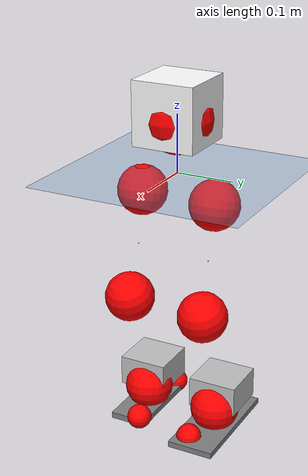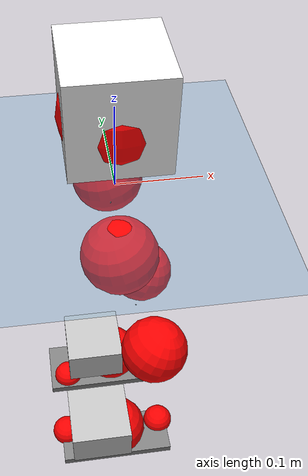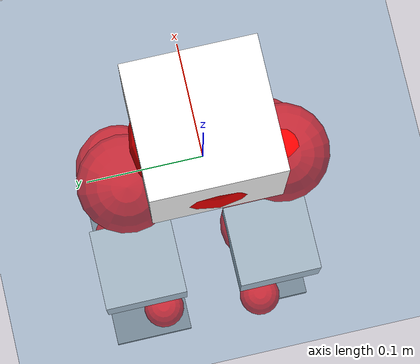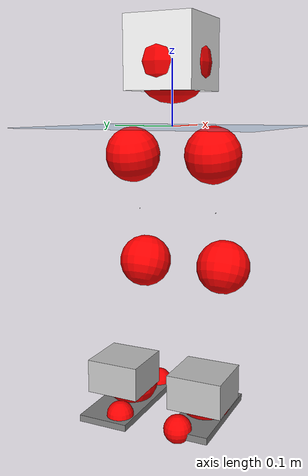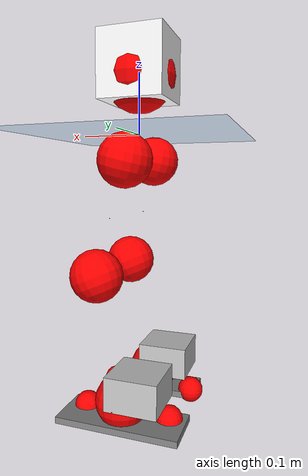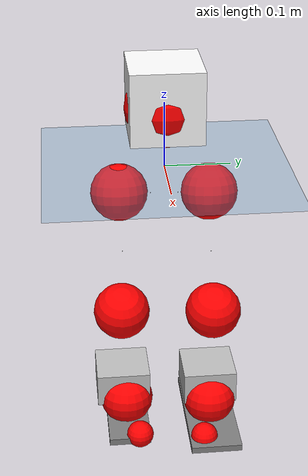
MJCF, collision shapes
<mujoco model="pi_12dof_release_v1">
  <compiler angle="radian" assetdir="assets" balanceinertia="true" inertiafromgeom="false"/>

  <option timestep="0.005" density="1.2" viscosity="2e-05"/>

  <size nkey="1"/>

  <visual>
    <quality shadowsize="8192"/>
    <map shadowclip="0.5"/>
  </visual>

  <default>
    <default class="/">
      <joint armature="0.01" damping="0.01" frictionloss="0.01"/>
      <geom contype="0" conaffinity="0" group="1" solref="-1000 -80"/>
      <site size="0.01 0.005 0.005" group="5"/>
      <general forcelimited="true" biastype="affine" gainprm="20" biasprm="0 -20 -0.5"/>
      <default class="foot">
        <geom size="0.0845 0.036 0.005" type="box" condim="6" group="4" priority="1" friction="0.9 0.2 0.2" solimp="0.015 1 0.005"/>
      </default>
      <default class="reward_collision_sphere">
        <geom group="5" rgba="1 0 0 1"/>
      </default>
    </default>
  </default>

  <asset>
    <texture type="skybox" colorspace="auto" name="//unnamed_texture_0" builtin="gradient" rgb1="0.95 0.95 0.95" rgb2="0.95 0.95 0.95" width="100" height="600"/>
    <texture type="2d" colorspace="auto" name="texplane" builtin="checker" rgb1="0.345 0.575 0.748" rgb2="0.345 0.575 0.748" markrgb="1 1 1" width="512" height="512"/>
    <material name="MatPlane" class="/" texture="texplane" texuniform="true" texrepeat="2 2" specular="0.9"/>
    <mesh name="baselink_1" class="/" file="baselink_1.STL"/>
    <mesh name="r_hip_pitch_link" class="/" file="r_hip_pitch_link.STL"/>
    <mesh name="r_hip_roll_link" class="/" file="r_hip_roll_link.STL"/>
    <mesh name="r_thigh_link" class="/" file="r_thigh_link.STL"/>
    <mesh name="r_calf_link" class="/" file="r_calf_link.STL"/>
    <mesh name="r_ankle_pitch_link" class="/" file="r_ankle_pitch_link.STL"/>
    <mesh name="r_ankle_roll_link" class="/" file="r_ankle_roll_link.STL"/>
    <mesh name="l_hip_pitch_link" class="/" file="l_hip_pitch_link.STL"/>
    <mesh name="l_hip_roll_link" class="/" file="l_hip_roll_link.STL"/>
    <mesh name="l_thigh_link" class="/" file="l_thigh_link.STL"/>
    <mesh name="l_calf_link" class="/" file="l_calf_link.STL"/>
    <mesh name="l_ankle_pitch_link" class="/" file="l_ankle_pitch_link.STL"/>
    <mesh name="l_ankle_roll_link" class="/" file="l_ankle_roll_link.STL"/>
  </asset>

  <worldbody>
    <geom name="floor" class="/" size="100 100 0.125" type="plane" group="0" material="MatPlane"/>
    <light name="toplight_shadow" class="/" pos="0 0 5" dir="0.0990148 0.0990148 -0.990148" type="directional" ambient="0.04 0.04 0.04" diffuse="0.55 0.55 0.55" specular="0.12 0.12 0.12"/>
    <light name="toplight_fill" class="/" pos="0 0 5" dir="0.0990148 0.0990148 -0.990148" type="directional" castshadow="false" ambient="0.04 0.04 0.04" diffuse="0.3 0.3 0.3" specular="0.08 0.08 0.08"/>
    <body name="trunk" pos="-0.000141642 0.000107 -0.00154133" quat="1 3.32694e-05 -0.000433041 0.000114402">
      <inertial pos="0.00228175 -0.000914092 0.05548" quat="0.694971 0.0096461 0.00947674 0.71891" mass="2.73186" diaginertia="0.0123414 0.00377651 0.018674"/>
      <joint name="//unnamed_joint_0" type="free"/>
      <geom name="//unnamed_geom_1" class="/" type="mesh" density="0" rgba="1 1 1 1" mesh="baselink_1"/>
      <geom name="//unnamed_geom_2" class="/" size="0.0542954 0.0542954 0.0542954" pos="0 0 0.108534" type="box" rgba="1 1 1 1"/>
      <geom name="//unnamed_geom_3" class="reward_collision_sphere" size="0.0597249" pos="0 0 0.0949673"/>
      <site name="imu" class="/" pos="0.0133301 -0.012206 0.0135678" size="0.0108591"/>
      <camera name="track" class="/" pos="0 -1.69245 0" quat="0.707107 0.707107 0 0" mode="trackcom"/>
      <camera name="ego_camera" class="/" pos="0.0791118 0 0.244202" quat="-0.5 -0.5 0.5 0.5"/>
      <body name="r_hip_pitch_link" pos="-0.00161548 -0.021255 -0.0425705" quat="0.992183 0.000571833 -0.124785 0.00117514">
        <inertial pos="0.00074967 -0.0478567 -0.00286522" quat="-0.0188596 0.707383 -0.0236798 0.706182" mass="0.446056" diaginertia="0.000136949 3.99459e-05 0.000380906"/>
        <joint name="r_hip_pitch_joint" class="/" pos="0 0 0" axis="0.0035731 -0.999968 -0.0071976" stiffness="0.00289981" range="-1.76663 1.2135" armature="0.00959428" damping="0.00373319" frictionloss="0.0102032"/>
        <geom name="//unnamed_geom_4" class="/" type="mesh" density="0" rgba="0.75294 0.75294 0.75294 1" mesh="r_hip_pitch_link"/>
        <geom name="//unnamed_geom_5" class="/" size="0.000542954 0.000542954 0.000542954" type="box" rgba="0.75294 0.75294 0.75294 1"/>
        <body name="r_hip_roll_link" pos="-0.00160151 -0.0475143 0.00284371" quat="1 -8.3171e-05 0.000137643 -0.000129231">
          <inertial pos="-0.00181234 0.000873693 -0.0849496" quat="0.707984 -0.0812527 -0.0815101 0.696788" mass="0.512376" diaginertia="0.00043276 0.000122438 0.000603972"/>
          <joint name="r_hip_roll_joint" class="/" pos="0 0 0" axis="-0.999992 5.55818e-05 -0.00409175" range="-0.124187 0.495733" armature="0.0102055" damping="0.0330685" frictionloss="0.0121435"/>
          <geom name="//unnamed_geom_6" class="/" type="mesh" density="0" rgba="0.75294 0.75294 0.75294 1" mesh="r_hip_roll_link"/>
          <geom name="//unnamed_geom_7" class="/" size="0.000542954 0.000542954 0.000542954" type="box" rgba="0.75294 0.75294 0.75294 1"/>
          <geom name="//unnamed_geom_8" class="reward_collision_sphere" size="0.0434363"/>
          <body name="r_thigh_link" pos="-0.00298186 0.00189845 -0.092993" quat="1 0.000224657 -5.58995e-06 0.000128467">
            <inertial pos="0.00107243 0.000670341 -0.0631774" quat="0.737249 0.675621 3.33529e-05 0.000545795" mass="0.137216" diaginertia="0.000162809 4.17692e-05 0.000260887"/>
            <joint name="r_thigh_joint" class="/" pos="0 0 0" axis="0.00169955 -0.000629694 -0.999998" stiffness="0.000308148" range="-0.29343 0.567814" armature="0.0111395" damping="0.00894826" frictionloss="0.010378"/>
            <geom name="//unnamed_geom_9" class="/" type="mesh" density="0" rgba="0.75294 0.75294 0.75294 1" mesh="r_thigh_link"/>
            <geom name="//unnamed_geom_10" class="/" size="0.000542954 0.000542954 0.000542954" type="box" rgba="0.75294 0.75294 0.75294 1"/>
            <body name="r_calf_link" pos="0.00239229 -0.00455018 -0.0946052" quat="0.947643 -0.000132693 0.319331 -0.00029931">
              <inertial pos="0.00068203 0.0010211 -0.0963185" quat="0.99997 -0.00360098 0.000162405 0.00684743" mass="1.07843" diaginertia="0.00463168 0.00147399 0.000801285"/>
              <joint name="r_calf_joint" class="/" pos="0 0 0" axis="-0.00460509 -0.999973 0.00568261" range="-1.70488 0.656041" armature="0.0111086" damping="0.00796079" frictionloss="0.00954031"/>
              <geom name="//unnamed_geom_11" class="/" type="mesh" density="0" rgba="0.75294 0.75294 0.75294 1" mesh="r_calf_link"/>
              <geom name="//unnamed_geom_12" class="/" size="0.000542954 0.000542954 0.000542954" type="box" rgba="0.75294 0.75294 0.75294 1"/>
              <geom name="//unnamed_geom_13" class="reward_collision_sphere" size="0.0434363"/>
              <body name="r_ankle_pitch_link" pos="-0.00179498 0.00246232 -0.190063" quat="0.980047 -0.00106772 -0.198762 0.000485604">
                <inertial pos="0.00453052 0.0020342 -9.21903e-05" quat="0.00143537 0.706625 -0.00301801 0.70758" mass="0.212471" diaginertia="0.000394971 9.06439e-05 0.000547966"/>
                <joint name="r_ankle_pitch_joint" class="/" pos="0 0 0" axis="0.0124335 -0.999923 -0.000176833" range="-1.33635 0.554584" armature="0.0108697" damping="0.00609194" frictionloss="0.0110366"/>
                <geom name="//unnamed_geom_14" class="/" type="mesh" density="0" rgba="0.75294 0.75294 0.75294 1" mesh="r_ankle_pitch_link"/>
                <geom name="//unnamed_geom_15" class="/" size="0.0423504 0.0434363 0.0271477" type="box" rgba="0.75294 0.75294 0.75294 1"/>
                <body name="r_ankle_roll_link" pos="0.0783111 0.00520659 0.00213159" quat="1 0.000593595 0.000123992 0.000284783">
                  <inertial pos="-0.0277209 -0.00191334 -0.021192" quat="0.555484 0.424474 0.433469 0.568652" mass="0.683397" diaginertia="0.00151685 0.000451915 0.00131478"/>
                  <joint name="r_ankle_roll_joint" class="/" pos="0 0 0" axis="-0.999993 -0.00289948 0.00236179" stiffness="0.00742943" range="-0.137819 0.125073" armature="0.0108132" damping="0.00858549" frictionloss="0.00981758"/>
                  <geom name="//unnamed_geom_16" class="/" type="mesh" density="0" rgba="0.75294 0.75294 0.75294 1" mesh="r_ankle_roll_link"/>
                  <geom name="//unnamed_geom_17" class="/" type="mesh" rgba="0.75294 0.75294 0.75294 1" mesh="r_ankle_roll_link"/>
                  <geom name="right_foot" class="foot" size="0.0811246 0.0337666 0.00544278" pos="-0.053796 0 -0.0596937"/>
                  <geom name="//unnamed_geom_19" class="reward_collision_sphere" size="0.0434363" pos="-0.0527412 0 -0.0271335"/>
                  <geom name="//unnamed_geom_20" class="reward_collision_sphere" size="0.0217182" pos="0.0158224 0.0169245 -0.054267"/>
                  <geom name="//unnamed_geom_21" class="reward_collision_sphere" size="0.0217182" pos="-0.126579 0.0169245 -0.054267"/>
                  <site name="right_foot" class="foot" pos="-0.053796 0 -0.0596937" size="0.0108591"/>
                </body>
              </body>
            </body>
          </body>
        </body>
      </body>
      <body name="l_hip_pitch_link" pos="-0.00207362 0.0204689 -0.0435027" quat="0.992224 -0.000432608 -0.12446 0.00040166">
        <inertial pos="-0.0017347 0.0455312 0.00152801" quat="-0.0394698 0.696046 0.0309901 0.716241" mass="0.515228" diaginertia="0.000173526 4.68085e-05 0.000448189"/>
        <joint name="l_hip_pitch_joint" class="/" pos="0 0 0" axis="0.000718911 1 -1.85203e-05" stiffness="0.0016488" range="-1.23183 1.76135" armature="0.0121218" damping="0.0234021" frictionloss="0.0106057"/>
        <geom name="//unnamed_geom_22" class="/" type="mesh" density="0" rgba="0.75294 0.75294 0.75294 1" mesh="l_hip_pitch_link"/>
        <geom name="//unnamed_geom_23" class="/" size="0.000542954 0.000542954 0.000542954" type="box" rgba="0.75294 0.75294 0.75294 1"/>
        <body name="l_hip_roll_link" pos="0.00193082 0.0477522 -4.76996e-05" quat="0.999999 0.000499651 -0.00127082 -0.000231489">
          <inertial pos="-0.00361196 -0.00174107 -0.0822732" quat="0.706631 -0.0776167 -0.0853336 0.698117" mass="0.488265" diaginertia="0.000423042 0.000115686 0.000604119"/>
          <joint name="l_hip_roll_joint" class="/" pos="0 0 0" axis="-0.99992 -0.00480226 -0.011675" range="-0.543654 0.135319" armature="0.011963" damping="0.012688" frictionloss="0.0109743"/>
          <geom name="//unnamed_geom_24" class="/" type="mesh" density="0" rgba="0.75294 0.75294 0.75294 1" mesh="l_hip_roll_link"/>
          <geom name="//unnamed_geom_25" class="/" size="0.000542954 0.000542954 0.000542954" type="box" rgba="0.75294 0.75294 0.75294 1"/>
          <geom name="//unnamed_geom_26" class="reward_collision_sphere" size="0.0434363"/>
          <body name="l_thigh_link" pos="0.00155233 0.00157075 -0.0935632" quat="1 0.000184899 -0.00020575 0.000141675">
            <inertial pos="0.000963193 -0.00428923 -0.0659285" quat="0.675815 0.737071 -0.000169611 0.000348965" mass="0.139661" diaginertia="0.000152653 3.94513e-05 0.000248732"/>
            <joint name="l_thigh_joint" class="/" pos="0 0 0" axis="-0.0092317 -0.00453269 -0.999947" range="-0.554854 0.293949" armature="0.00943358" damping="0.0109577" frictionloss="0.010031"/>
            <geom name="//unnamed_geom_27" class="/" type="mesh" density="0" rgba="0.75294 0.75294 0.75294 1" mesh="l_thigh_link"/>
            <geom name="//unnamed_geom_28" class="/" size="0.000542954 0.000542954 0.000542954" type="box" rgba="0.75294 0.75294 0.75294 1"/>
            <body name="l_calf_link" pos="-0.00126495 0.00160934 -0.0959772" quat="0.947621 9.5982e-05 0.319397 4.63771e-05">
              <inertial pos="0.00184635 0.00532332 -0.0974262" quat="0.999881 0.0117276 0.00427036 0.00905105" mass="0.987073" diaginertia="0.00460585 0.00143362 0.000778898"/>
              <joint name="l_calf_joint" class="/" pos="0 0 0" axis="0.000207404 0.999999 -0.0010582" stiffness="0.0117397" range="-0.60928 1.59949" armature="0.0113658" damping="0.0188307" frictionloss="0.00976424"/>
              <geom name="//unnamed_geom_29" class="/" type="mesh" density="0" rgba="0.75294 0.75294 0.75294 1" mesh="l_calf_link"/>
              <geom name="//unnamed_geom_30" class="/" size="0.000542954 0.000542954 0.000542954" type="box" rgba="0.75294 0.75294 0.75294 1"/>
              <geom name="//unnamed_geom_31" class="reward_collision_sphere" size="0.0434363"/>
              <body name="l_ankle_pitch_link" pos="-0.00111071 0.00339531 -0.187898" quat="0.980135 0.000218379 -0.198332 0.000194022">
                <inertial pos="0.00486087 -0.00312446 0.00242885" quat="0.000371264 0.704419 0.00170438 0.709783" mass="0.231157" diaginertia="0.000416156 0.000100222 0.000565608"/>
                <joint name="l_ankle_pitch_joint" class="/" pos="0 0 0" axis="0.00359921 0.999992 -0.00144698" stiffness="0.00100131" range="-0.481228 1.28489" armature="0.0103398" damping="0.0122327" frictionloss="0.00975146"/>
                <geom name="//unnamed_geom_32" class="/" type="mesh" density="0" rgba="0.75294 0.75294 0.75294 1" mesh="l_ankle_pitch_link"/>
                <geom name="//unnamed_geom_33" class="/" size="0.0423504 0.0434363 0.0271477" type="box" rgba="0.75294 0.75294 0.75294 1"/>
                <body name="l_ankle_roll_link" pos="0.0812204 0.000217795 0.00137951" quat="1 -2.37662e-05 -0.000580549 0.000261754">
                  <inertial pos="-0.0228021 0.000434956 -0.0198294" quat="0.561451 0.431418 0.438011 0.553893" mass="0.646071" diaginertia="0.00145854 0.000419362 0.00122206"/>
                  <joint name="l_ankle_roll_joint" class="/" pos="0 0 0" axis="-0.999931 0.0107837 -0.00458714" range="-0.156352 0.204047" armature="0.010981" damping="0.0149386" frictionloss="0.0120419"/>
                  <geom name="//unnamed_geom_34" class="/" type="mesh" density="0" rgba="0.75294 0.75294 0.75294 1" mesh="l_ankle_roll_link"/>
                  <geom name="//unnamed_geom_35" class="/" type="mesh" rgba="0.75294 0.75294 0.75294 1" mesh="l_ankle_roll_link"/>
                  <geom name="left_foot" class="foot" size="0.101056 0.0409944 0.00523468" pos="-0.053796 0 -0.0596937"/>
                  <geom name="//unnamed_geom_37" class="reward_collision_sphere" size="0.0434363" pos="-0.0527412 0 -0.0271335"/>
                  <geom name="//unnamed_geom_38" class="reward_collision_sphere" size="0.0217182" pos="0.0158224 -0.0169245 -0.054267"/>
                  <geom name="//unnamed_geom_39" class="reward_collision_sphere" size="0.0217182" pos="-0.126579 -0.0169245 -0.054267"/>
                  <site name="left_foot" class="foot" pos="-0.053796 0 -0.0596937" size="0.0108591"/>
                </body>
              </body>
            </body>
          </body>
        </body>
      </body>
    </body>
  </worldbody>

  <contact>
    <pair class="/" geom1="floor" geom2="right_foot" name="//unnamed_contact_1"/>
    <pair class="/" geom1="floor" geom2="left_foot" name="//unnamed_contact_0"/>
  </contact>

  <actuator>
    <general name="r_hip_pitch_joint" class="/" joint="r_hip_pitch_joint" forcerange="-21.5418 21.5418" gainprm="20.2842" biasprm="0 -20.2842 -0.575643"/>
    <general name="r_hip_roll_joint" class="/" joint="r_hip_roll_joint" forcerange="-23.2294 23.2294" gainprm="20.2842" biasprm="0 -20.2842 -0.575643"/>
    <general name="r_thigh_joint" class="/" joint="r_thigh_joint" forcerange="-21.0066 21.0066" gainprm="20.2842" biasprm="0 -20.2842 -0.575643"/>
    <general name="r_calf_joint" class="/" joint="r_calf_joint" forcerange="-25.044 25.044" gainprm="20.2842" biasprm="0 -20.2842 -0.575643"/>
    <general name="r_ankle_pitch_joint" class="/" joint="r_ankle_pitch_joint" forcerange="-24.522 24.522" gainprm="20.2842" biasprm="0 -20.2842 -0.575643"/>
    <general name="r_ankle_roll_joint" class="/" joint="r_ankle_roll_joint" forcerange="-22.4505 22.4505" gainprm="20.2842" biasprm="0 -20.2842 -0.575643"/>
    <general name="l_hip_pitch_joint" class="/" joint="l_hip_pitch_joint" forcerange="-20.7401 20.7401" gainprm="20.2842" biasprm="0 -20.2842 -0.575643"/>
    <general name="l_hip_roll_joint" class="/" joint="l_hip_roll_joint" forcerange="-24.5782 24.5782" gainprm="20.2842" biasprm="0 -20.2842 -0.575643"/>
    <general name="l_thigh_joint" class="/" joint="l_thigh_joint" forcerange="-24.7174 24.7174" gainprm="20.2842" biasprm="0 -20.2842 -0.575643"/>
    <general name="l_calf_joint" class="/" joint="l_calf_joint" forcerange="-20.6621 20.6621" gainprm="20.2842" biasprm="0 -20.2842 -0.575643"/>
    <general name="l_ankle_pitch_joint" class="/" joint="l_ankle_pitch_joint" forcerange="-25.0511 25.0511" gainprm="20.2842" biasprm="0 -20.2842 -0.575643"/>
    <general name="l_ankle_roll_joint" class="/" joint="l_ankle_roll_joint" forcerange="-20.5324 20.5324" gainprm="20.2842" biasprm="0 -20.2842 -0.575643"/>
  </actuator>

  <sensor>
    <gyro site="imu" name="imu_angular_velocity"/>
    <velocimeter site="imu" name="imu_linear_velocity"/>
    <framelinvel objtype="site" objname="left_foot" name="left_foot_global_linear_velocity"/>
    <framelinvel objtype="site" objname="right_foot" name="right_foot_global_linear_velocity"/>
  </sensor>

  <keyframe>
    <key name="home" qpos="0 0 0.291 1 0 0 0 0.4 0 0 -0.8 0.4 0 -0.4 0 0 0.8 -0.4 0"/>
  </keyframe>
</mujoco>
